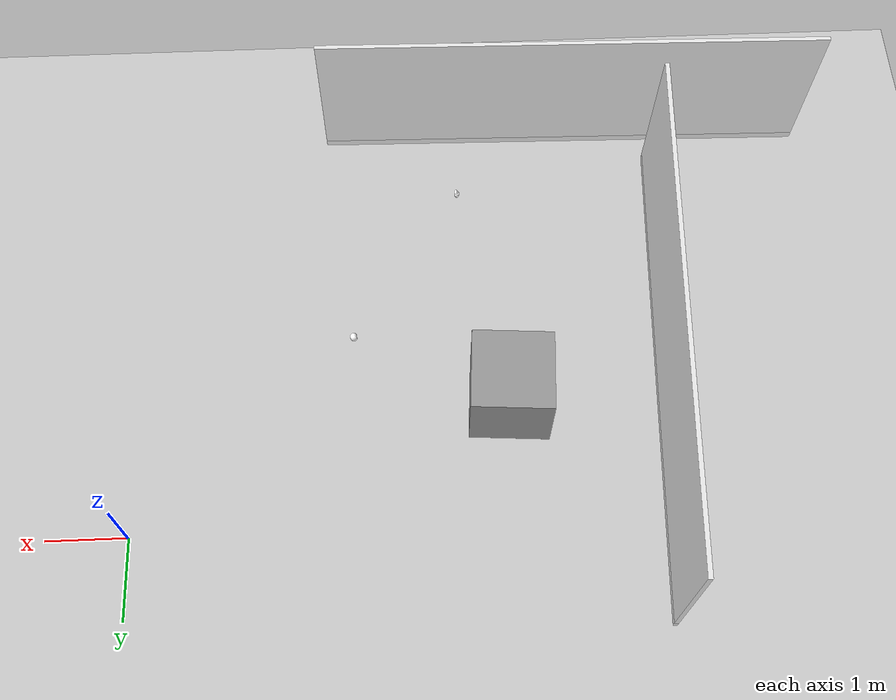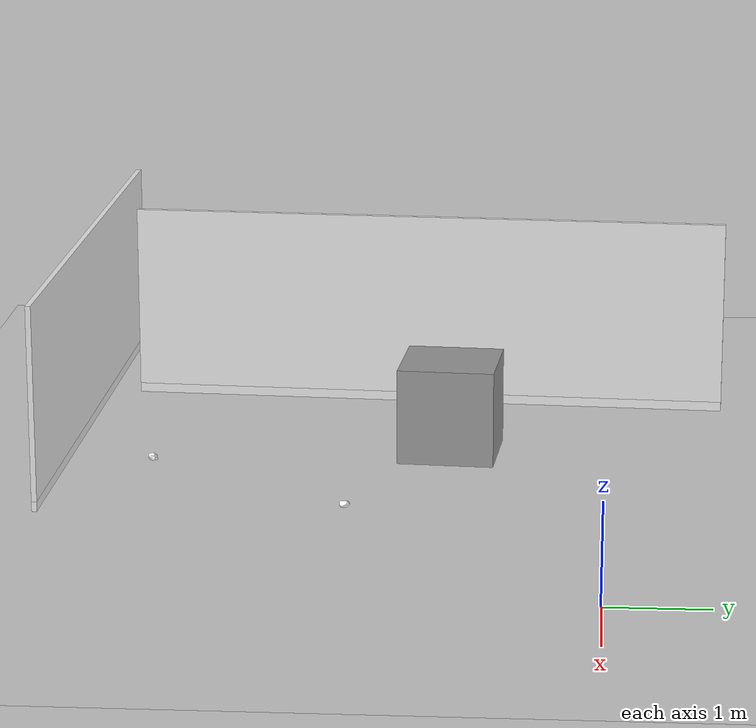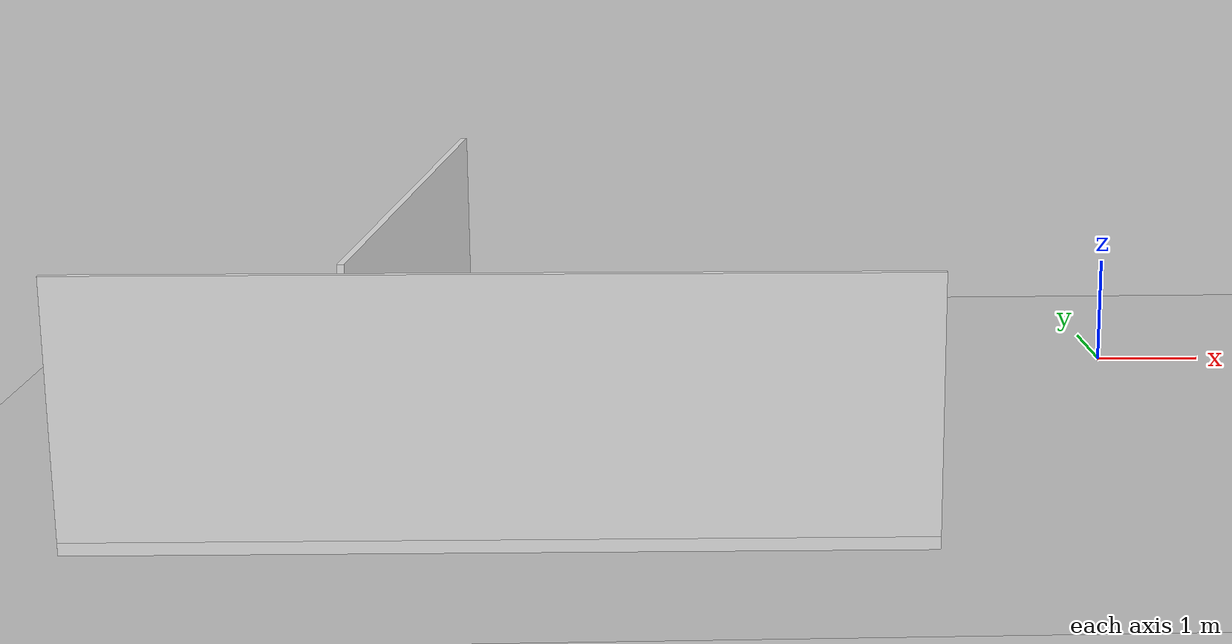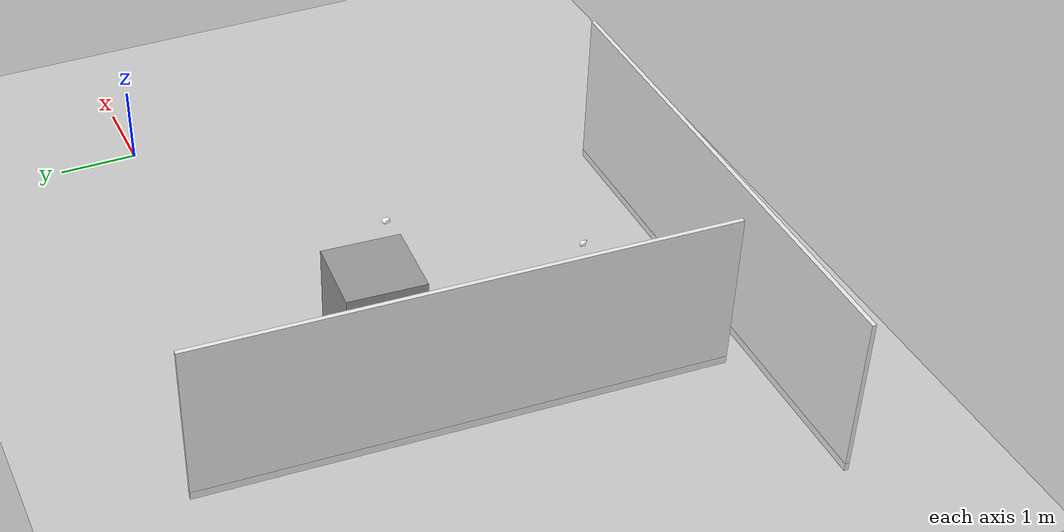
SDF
<sdf version="1.7">
 <world name="default">
  <model name="ground_plane">
   <static>1</static>
   <link name="link">
    <collision name="collision">
     <geometry><plane><normal>0 0 1</normal><size>100 100</size></plane></geometry>
     <surface><friction><ode><mu>100</mu><mu2>50</mu2></ode></friction></surface>
    </collision>
    <visual name="visual">
     <cast_shadows>0</cast_shadows>
     <geometry><plane><normal>0 0 1</normal><size>100 100</size></plane></geometry>
     <material>
      <script><uri>file://media/materials/scripts/gazebo.material</uri><name>Gazebo/Grey</name></script>
     </material>
    </visual>
   </link>
  </model>
  <model name="unit_box_0">
   <pose>-4.66361 -1.5958 0.5 0 -0 -0.068173</pose>
   <link name="link">
    <inertial>
     <mass>1</mass>
     <inertia>
      <ixx>0.166667</ixx>
      <ixy>0</ixy>
      <ixz>0</ixz>
      <iyy>0.166667</iyy>
      <iyz>0</iyz>
      <izz>0.166667</izz>
     </inertia>
    </inertial>
    <collision name="collision"><geometry><box><size>1 1 1</size></box></geometry></collision>
    <visual name="visual">
     <geometry><box><size>1 1 1</size></box></geometry>
     <material>
      <script><name>Gazebo/Grey</name><uri>file://media/materials/scripts/gazebo.material</uri></script>
     </material>
    </visual>
   </link>
  </model>
  <model name="full_wall_55_6475_2090_clone_clone_0_clone_0_clone_0">
   <link name="link">
    <inertial>
     <mass>50</mass>
     <inertia><ixx>1</ixx><ixy>0</ixy><ixz>0</ixz><iyy>1</iyy><iyz>0</iyz><izz>1</izz></inertia>
    </inertial>
    <visual name="bottom_frame">
     <pose>0 0 0.05 0 -0 0</pose>
     <geometry><box><size>0.055 6.475 0.1</size></box></geometry>
     <material>
      <script><uri>model://base_materials/color/scripts</uri><name>hsr_color/white</name></script>
     </material>
    </visual>
    <collision name="collision_bottom_frame">
     <pose>0 0 0.05 0 -0 0</pose>
     <geometry><box><size>0.055 6.475 0.1</size></box></geometry>
    </collision>
    <visual name="wall">
     <pose>0 0 1.095 0 -0 0</pose>
     <geometry><box><size>0.055 6.475 1.99</size></box></geometry>
     <material>
      <script>
       <uri>model://base_materials/wall/scripts</uri>
       <uri>model://base_materials/wall/textures</uri>
       <name>wall/white_noise</name>
      </script>
     </material>
    </visual>
    <collision name="collision_wall">
     <pose>0 0 1.095 0 -0 0</pose>
     <geometry><box><size>0.055 6.475 1.99</size></box></geometry>
    </collision>
    <velocity_decay><linear>0</linear><angular>0</angular></velocity_decay>
   </link>
   <static>1</static>
   <pose>-6.58032 -1.94621 0 0 -0 3.08646</pose>
  </model>
  <model name="full_wall_55_6475_2090_clone_clone_0_clone_2">
   <link name="link">
    <inertial>
     <mass>50</mass>
     <inertia><ixx>1</ixx><ixy>0</ixy><ixz>0</ixz><iyy>1</iyy><iyz>0</iyz><izz>1</izz></inertia>
    </inertial>
    <visual name="bottom_frame">
     <pose>0 0 0.05 0 -0 0</pose>
     <geometry><box><size>0.055 6.475 0.1</size></box></geometry>
     <material>
      <script><uri>model://base_materials/color/scripts</uri><name>hsr_color/white</name></script>
     </material>
    </visual>
    <collision name="collision_bottom_frame">
     <pose>0 0 0.05 0 -0 0</pose>
     <geometry><box><size>0.055 6.475 0.1</size></box></geometry>
    </collision>
    <visual name="wall">
     <pose>0 0 1.095 0 -0 0</pose>
     <geometry><box><size>0.055 6.475 1.99</size></box></geometry>
     <material>
      <script>
       <uri>model://base_materials/wall/scripts</uri>
       <uri>model://base_materials/wall/textures</uri>
       <name>wall/white_noise</name>
      </script>
     </material>
    </visual>
    <collision name="collision_wall">
     <pose>0 0 1.095 0 -0 0</pose>
     <geometry><box><size>0.055 6.475 1.99</size></box></geometry>
    </collision>
    <velocity_decay><linear>0</linear><angular>0</angular></velocity_decay>
   </link>
   <static>1</static>
   <pose>-5.6148 -5.53573 0 0 -0 1.55299</pose>
  </model>
  <model name="my_rock02_clone_2">
   <link name="link">
    <inertial>
     <mass>0.3</mass>
     <inertia><ixx>1</ixx><ixy>0</ixy><ixz>0</ixz><iyy>1</iyy><iyz>0</iyz><izz>1</izz></inertia>
    </inertial>
    <velocity_decay><linear>0</linear><angular>0</angular></velocity_decay>
    <visual name="visual">
     <pose>0 0 0.031 0 -0 0</pose>
     <geometry><mesh><uri>model://my_rock02/meshes/model.dae</uri><scale>0.06 0.06 0.06</scale></mesh></geometry>
     <material>
      <script>
       <uri>model://my_rock02/materials/scripts</uri>
       <uri>model://my_rock02/materials/textures</uri>
       <name>myrock/Diffuse</name>
      </script>
      <shader type="pixel"><normal_map>__default__</normal_map></shader>
      <ambient>1 1 1 1</ambient>
      <diffuse>1 1 1 1</diffuse>
      <specular>0 0 0 1</specular>
      <emissive>0 0 0 1</emissive>
     </material>
    </visual>
    <collision name="collision">
     <pose>-0 0 0.03 0 -0 0</pose>
     <geometry>
      <mesh>
       <uri>/home/roboworks/CIRE2022/rocks_models/my_rock02/meshes/model.dae</uri>
       <scale>0.06 0.06 0.06</scale>
      </mesh>
     </geometry>
     <surface>
      <friction>
       <ode><mu>1</mu><mu2>1</mu2><fdir1>0 0 0</fdir1><slip1>0</slip1><slip2>0</slip2></ode>
       <torsional>
        <coefficient>1</coefficient>
        <patch_radius>0</patch_radius>
        <surface_radius>0</surface_radius>
        <use_patch_radius>1</use_patch_radius>
        <ode><slip>0</slip></ode>
       </torsional>
      </friction>
      <bounce><restitution_coefficient>1e-05</restitution_coefficient><threshold>0</threshold></bounce>
      <contact>
       <collide_without_contact>0</collide_without_contact>
       <collide_without_contact_bitmask>1</collide_without_contact_bitmask>
       <collide_bitmask>1</collide_bitmask>
       <ode>
        <soft_cfm>0</soft_cfm>
        <soft_erp>0.2</soft_erp>
        <kp>1e+13</kp>
        <kd>1</kd>
        <max_vel>10</max_vel>
        <min_depth>0</min_depth>
       </ode>
       <bullet>
        <split_impulse>1</split_impulse>
        <split_impulse_penetration_threshold>-0.01</split_impulse_penetration_threshold>
        <soft_cfm>0</soft_cfm>
        <soft_erp>0.2</soft_erp>
        <kp>1e+13</kp>
        <kd>1</kd>
       </bullet>
      </contact>
     </surface>
    </collision>
   </link>
   <static>0</static>
   <pose>-2.71462 -2.54777 0.003373 0.026139 0.010539 -0.000892</pose>
  </model>
  <model name="my_rock04_clone_1">
   <link name="link">
    <inertial>
     <mass>0.3</mass>
     <inertia><ixx>1</ixx><ixy>0</ixy><ixz>0</ixz><iyy>1</iyy><iyz>0</iyz><izz>1</izz></inertia>
    </inertial>
    <velocity_decay><linear>0</linear><angular>0</angular></velocity_decay>
    <visual name="visual">
     <pose>0 0 0.031 0 -0 0</pose>
     <geometry><mesh><uri>model://my_rock04/meshes/model.dae</uri><scale>0.06 0.06 0.06</scale></mesh></geometry>
     <material>
      <script>
       <uri>model://my_rock04/materials/scripts</uri>
       <uri>model://my_rock04/materials/textures</uri>
       <name>myrock/Diffuse</name>
      </script>
      <shader type="pixel"><normal_map>__default__</normal_map></shader>
      <ambient>1 1 1 1</ambient>
      <diffuse>1 1 1 1</diffuse>
      <specular>0 0 0 1</specular>
      <emissive>0 0 0 1</emissive>
     </material>
    </visual>
    <collision name="collision">
     <pose>0 0 0.03 0 -0 0</pose>
     <geometry>
      <mesh>
       <uri>/home/roboworks/CIRE2022/rocks_models/my_rock04/meshes/model.dae</uri>
       <scale>0.06 0.06 0.06</scale>
      </mesh>
     </geometry>
     <surface>
      <friction>
       <ode><mu>1</mu><mu2>1</mu2><fdir1>0 0 0</fdir1><slip1>0</slip1><slip2>0</slip2></ode>
       <torsional>
        <coefficient>1</coefficient>
        <patch_radius>0</patch_radius>
        <surface_radius>0</surface_radius>
        <use_patch_radius>1</use_patch_radius>
        <ode><slip>0</slip></ode>
       </torsional>
      </friction>
      <bounce><restitution_coefficient>0.2</restitution_coefficient><threshold>0</threshold></bounce>
      <contact>
       <collide_without_contact>0</collide_without_contact>
       <collide_without_contact_bitmask>1</collide_without_contact_bitmask>
       <collide_bitmask>1</collide_bitmask>
       <ode>
        <soft_cfm>0</soft_cfm>
        <soft_erp>0.2</soft_erp>
        <kp>1e+13</kp>
        <kd>1</kd>
        <max_vel>10</max_vel>
        <min_depth>0</min_depth>
       </ode>
       <bullet>
        <split_impulse>1</split_impulse>
        <split_impulse_penetration_threshold>-0.01</split_impulse_penetration_threshold>
        <soft_cfm>0</soft_cfm>
        <soft_erp>0.2</soft_erp>
        <kp>1e+13</kp>
        <kd>1</kd>
       </bullet>
      </contact>
     </surface>
    </collision>
   </link>
   <static>0</static>
   <pose>-4.14924 -4.66224 0.008745 0.112506 0.142998 -0.000521</pose>
  </model>
 </world>
</sdf>
